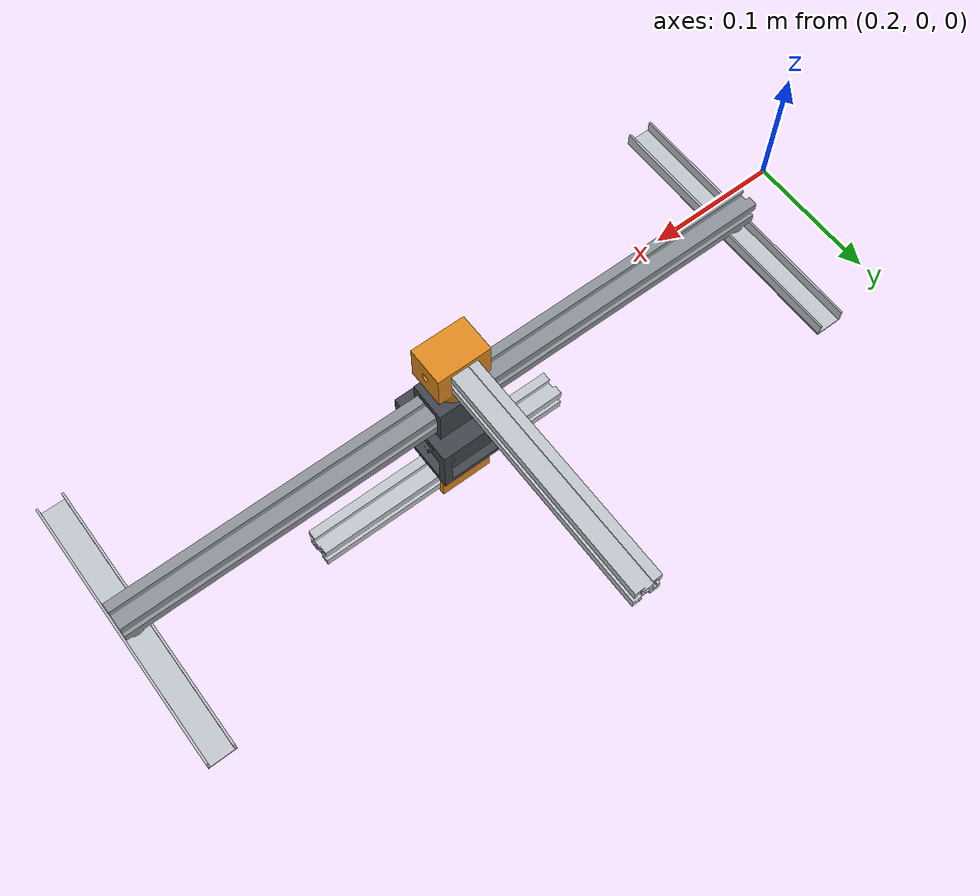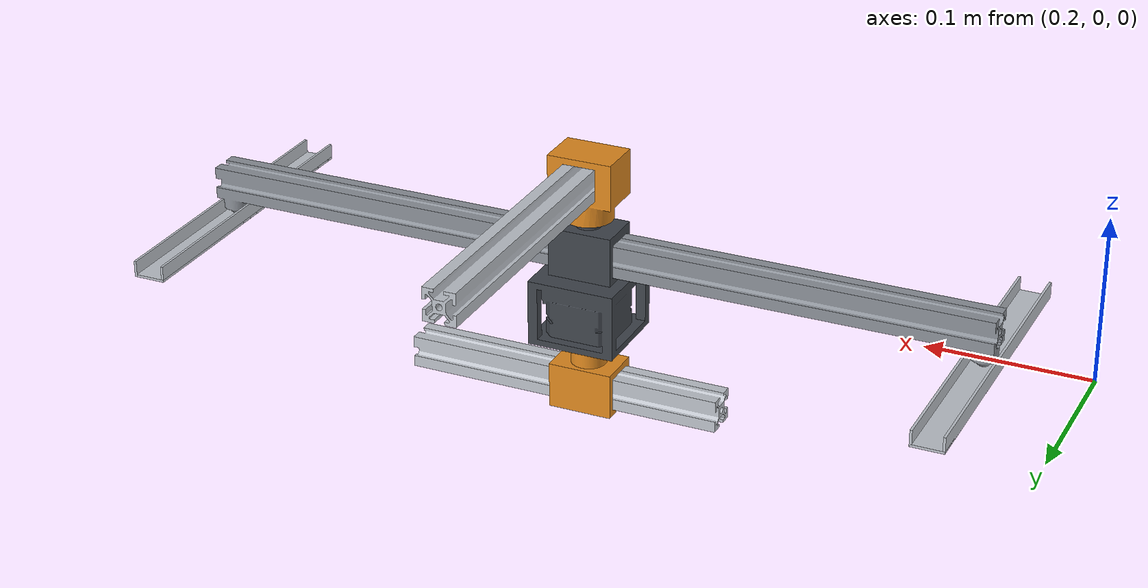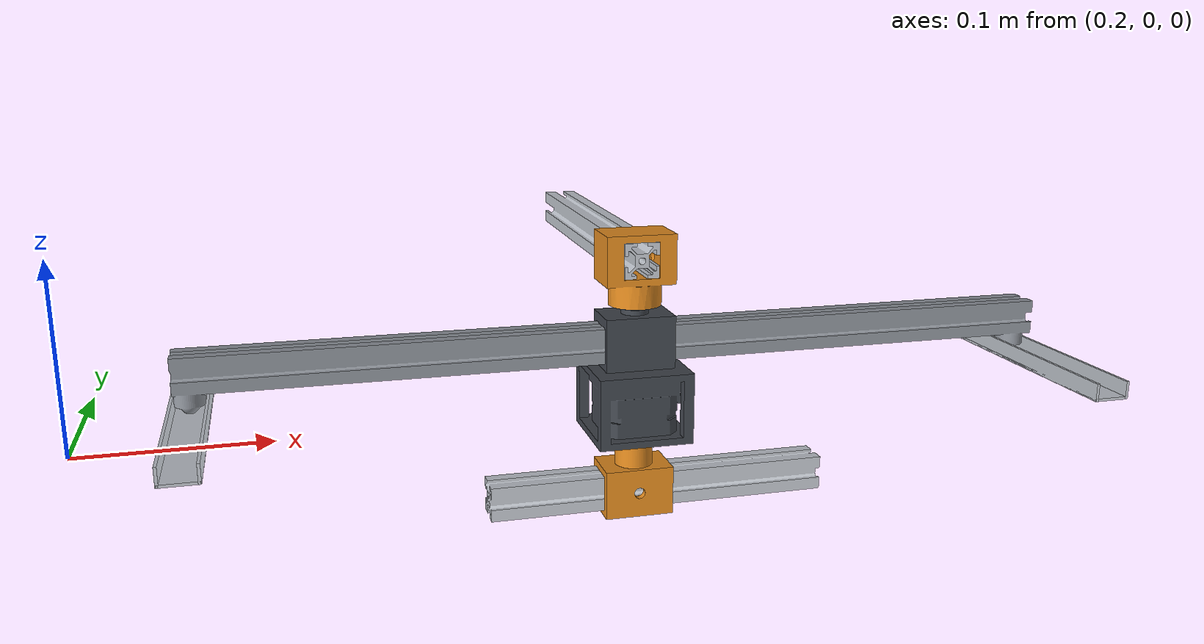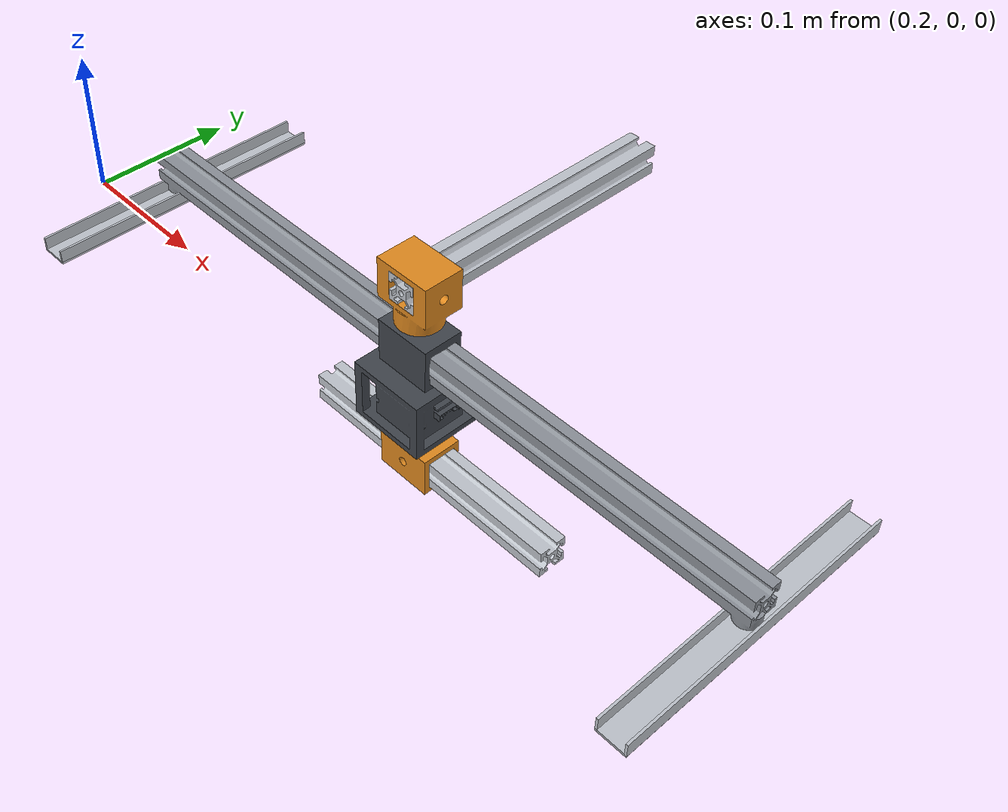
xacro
<?xml version="1.0"?>
<robot name="robot_art_single_layer" xmlns:xacro="http://www.ros.org/wiki/xacro">
  <xacro:arg name="rest_radius" default="0.0"/>  <!-- Godot: 0.07 so the URDF zero pose is a real radius -->
  <xacro:arg name="mesh_path" default="package://robot_art_layer/meshes/"/>
  <xacro:property name="M" value="$(arg mesh_path)"/>
  <xacro:property name="R0" value="$(arg rest_radius)"/>
  <xacro:include filename="robot_art_parts.xacro"/>
  <!-- same place as in the STEP file: pivot axis at x 499.35, y 26.33 mm; bar centre line at z 81.36 mm -->
  <xacro:property name="ax" value="0.49935"/>
  <xacro:property name="ay" value="0.02633"/>
  <xacro:property name="az" value="0.08136"/>

  <link name="world"/>
  <joint name="bar_above_fixed" type="fixed">
    <parent link="world"/><child link="bar_above"/><origin xyz="${ax} ${ay} ${az}"/>
  </joint>
  <xacro:bar_link name="bar_above"/>

  <joint name="clampA" type="fixed">
    <parent link="bar_above"/><child link="clampA"/><origin xyz="0 0 0"/>
  </joint>
  <xacro:clampA_link name="clampA"/>

  <!-- TOP PIVOT: 608 bearing, 23.7 mm below the bar centre line (passive) -->
  <joint name="pivot" type="continuous">
    <parent link="clampA"/><child link="motor"/><origin xyz="0 0 ${pivot_z}"/>
    <axis xyz="0 0 1"/><limit effort="0" velocity="10"/><dynamics friction="0.002" damping="0.0"/>
  </joint>
  <xacro:motor_link name="motor"/>
  <xacro:support_link name="support" parent="motor"/>
  <joint name="encoder_mount" type="fixed">
    <parent link="motor"/><child link="encoder"/><origin xyz="0 0 -0.0479"/>
  </joint>
  <link name="encoder"><inertial><mass value="0.001"/><inertia ixx="1e-9" ixy="0" ixz="0" iyy="1e-9" iyz="0" izz="1e-9"/></inertial></link>

  <!-- BOTTOM PIVOT: motor front face, 75.9 mm below the top pivot, driven by the NEMA 17 -->
  <joint name="joint" type="continuous">
    <parent link="motor"/><child link="hub"/><origin xyz="0 0 ${motor_z}"/><axis xyz="0 0 1"/>
    <limit effort="${motor_torque}" velocity="${max_speed}"/><dynamics damping="0.0"/>
  </joint>
  <link name="hub">
    <visual><geometry><mesh filename="${M}hub.stl" scale="${S}"/></geometry><material name="orange"/></visual>
    <collision><origin xyz="0 0 -0.0135"/><geometry><cylinder radius="0.011" length="0.018"/></geometry></collision>
    <collision><origin xyz="0 0 ${clampB_z}"/><geometry><box size="0.040 0.028 0.0284"/></geometry></collision>
    <inertial><origin xyz="-0.00000 0.00004 -0.02232"/><mass value="0.0208"/><inertia ixx="5.9366e-06" ixy="3.9488e-16" ixz="-1.5550e-12" iyy="6.2704e-06" iyz="1.3147e-08" izz="2.9028e-06"/></inertial>
  </link>

  <!-- CLAMP B: the next 200 mm bar slides through it along X; value = radius (STEP file shows 0.07) -->
  <joint name="clampB" type="prismatic">
    <parent link="hub"/><child link="next_bar"/>
    <origin xyz="${R0} 0 ${clampB_z}" rpy="0 0 ${pi/2}"/><axis xyz="0 -1 0"/>
    <limit lower="${r_min - R0}" upper="${r_max - R0}" effort="20" velocity="0.05"/><dynamics damping="0.5"/>
  </joint>
  <xacro:bar_link name="next_bar"/>

  <!-- tracks as in the STEP file (200 mm sections) -->
  <xacro:track name="track_L" x="${ax - track_x}" y="${ay}" z="${az + pivot_z + track_floor}" length="0.2"/>
  <xacro:track name="track_R" x="${ax + track_x}" y="${ay}" z="${az + pivot_z + track_floor}" length="0.2"/>
</robot>

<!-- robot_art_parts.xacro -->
<!--
  Shared link definitions for the Robot Art layer (included by both robot files).
  Numbers come from the CAD (cad/RobotArtLayer.FCStd). Units m, kg, rad.
-->
<robot xmlns:xacro="http://www.ros.org/wiki/xacro">
  <xacro:property name="S" value="0.001 0.001 0.001"/>
  <!-- offsets measured from the CAD -->
  <xacro:property name="pivot_z"  value="-0.0237"/>  <!-- 200 mm bar centre line -> bearing centre (top pivot) -->
  <xacro:property name="motor_z"  value="-0.0759"/>  <!-- top pivot -> motor front face (bottom pivot) -->
  <xacro:property name="clampB_z" value="-0.0367"/>  <!-- motor face -> next bar centre line -->
  <xacro:property name="r_min" value="0.030"/>
  <xacro:property name="r_max" value="0.170"/>
  <xacro:property name="motor_torque" value="0.13"/> <!-- N m, NEMA 17 pancake holding torque -->
  <xacro:property name="max_speed" value="1.0"/>     <!-- rad/s -->
  <!-- 500 mm support bar + tracks -->
  <xacro:property name="track_x"     value="0.242"/>   <!-- ball units sit 242 mm either side of the bar centre -->
  <xacro:property name="track_floor" value="-0.0477"/> <!-- ball bottom = track floor, below the top pivot -->
  <xacro:property name="slide_max"   value="0.214"/>   <!-- carriage (40 mm) can run until it meets a ball unit -->

  <material name="orange"><color rgba="0.88 0.54 0.12 1"/></material>
  <material name="alu"><color rgba="0.75 0.77 0.80 1"/></material>
  <material name="dark"><color rgba="0.25 0.27 0.30 1"/></material>
  <material name="red"><color rgba="0.8 0.1 0.1 1"/></material>
  <material name="steel"><color rgba="0.55 0.57 0.60 1"/></material>

  <xacro:macro name="bar_link" params="name">
    <link name="${name}">
      <visual><geometry><mesh filename="${M}bar.stl" scale="${S}"/></geometry><material name="alu"/></visual>
      <collision><origin xyz="0 0.086 0"/><geometry><box size="0.02 0.2 0.02"/></geometry></collision>
      <inertial><origin xyz="-0.00000 0.08600 0.00000"/><mass value="0.1000"/><inertia ixx="3.3741e-04" ixy="-8.6845e-21" ixz="-3.3719e-10" iyy="8.1483e-06" iyz="-3.5730e-21" izz="3.3741e-04"/></inertial>
    </link>
  </xacro:macro>

  <xacro:macro name="clampA_link" params="name">
    <link name="${name}">
      <visual><geometry><mesh filename="${M}clampA.stl" scale="${S}"/></geometry><material name="orange"/></visual>
      <collision><geometry><box size="0.040 0.028 0.0284"/></geometry></collision>
      <collision><origin xyz="0 0 -0.0207"/><geometry><cylinder radius="0.015" length="0.013"/></geometry></collision>
      <inertial><origin xyz="-0.00011 0.00000 -0.01275"/><mass value="0.0280"/><inertia ixx="6.2275e-06" ixy="-7.0054e-12" ixz="3.6730e-08" iyy="7.7408e-06" iyz="6.4456e-10" izz="4.3962e-06"/></inertial>
    </link>
  </xacro:macro>

  <!-- carriage + motor cage + pivot pin + encoder board + NEMA 17. Its X axis is the support bar direction. -->
  <xacro:macro name="motor_link" params="name">
    <link name="${name}">
      <visual><geometry><mesh filename="${M}motor.stl" scale="${S}"/></geometry><material name="dark"/></visual>
      <collision><origin xyz="0 0 -0.0237"/><geometry><box size="0.040 0.028 0.0304"/></geometry></collision>
      <collision><origin xyz="0 0 -0.0594"/><geometry><box size="0.0543 0.0543 0.041"/></geometry></collision>
      <inertial><origin xyz="0.00009 -0.00000 -0.05783"/><mass value="0.2011"/><inertia ixx="9.6019e-05" ixy="-3.2819e-11" ixz="5.4181e-09" iyy="9.6824e-05" iyz="-4.1809e-09" izz="5.7848e-05"/></inertial>
    </link>
  </xacro:macro>

  <!-- 500 mm 2020 support bar + 2 ball units. Never turns; slides through the carriage (passive). -->
  <xacro:macro name="support_link" params="name parent">
    <joint name="${name}" type="prismatic">
      <parent link="${parent}"/><child link="${name}_bar"/><origin xyz="0 0 0"/><axis xyz="1 0 0"/>
      <!-- value = support bar centre minus carriage centre, along the bar. Passive (effort 0). -->
      <limit lower="${-slide_max}" upper="${slide_max}" effort="0" velocity="1.0"/><dynamics friction="0.5" damping="0.0"/>
    </joint>
    <link name="${name}_bar">
      <visual><geometry><mesh filename="${M}support.stl" scale="${S}"/></geometry><material name="steel"/></visual>
      <collision><origin xyz="0 0 -0.0247"/><geometry><box size="0.50 0.02 0.02"/></geometry></collision>
      <collision><origin xyz="${-track_x} 0 -0.0387"/><geometry><cylinder radius="0.008" length="0.008"/></geometry></collision>
      <collision><origin xyz="${track_x} 0 -0.0387"/><geometry><cylinder radius="0.008" length="0.008"/></geometry></collision>
      <inertial><origin xyz="0 0 -0.02559"/><mass value="0.2660"/><inertia ixx="2.4046e-05" ixy="0" ixz="0" iyy="6.1592e-03" iyz="0" izz="6.1560e-03"/></inertial>
    </link>
  </xacro:macro>

  <!-- one U-channel track (20 x 10 x 1.5 mm aluminium, inner gap 17 mm) fixed to the frame, running along Y.
       Frame origin = middle of the track floor, where the ball unit rolls. -->
  <xacro:macro name="track" params="name x y z length">
    <joint name="${name}_fixed" type="fixed">
      <parent link="world"/><child link="${name}"/><origin xyz="${x} ${y} ${z}"/>
    </joint>
    <link name="${name}">
      <visual><origin xyz="0 0 -0.00075"/><geometry><box size="0.020 ${length} 0.0015"/></geometry><material name="alu"/></visual>
      <visual><origin xyz="-0.00925 0 0.0035"/><geometry><box size="0.0015 ${length} 0.010"/></geometry><material name="alu"/></visual>
      <visual><origin xyz="0.00925 0 0.0035"/><geometry><box size="0.0015 ${length} 0.010"/></geometry><material name="alu"/></visual>
    </link>
  </xacro:macro>
</robot>
